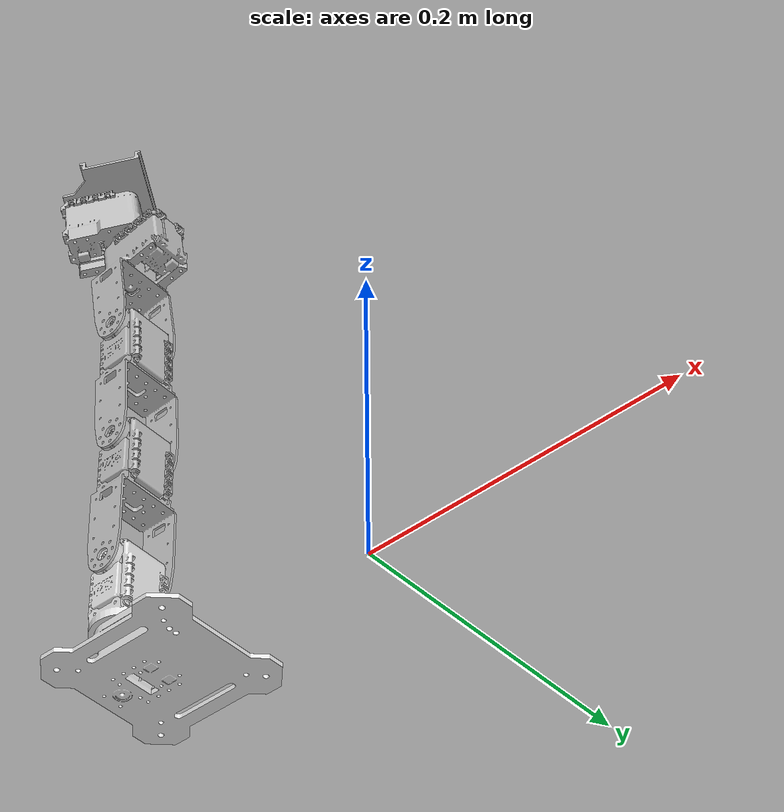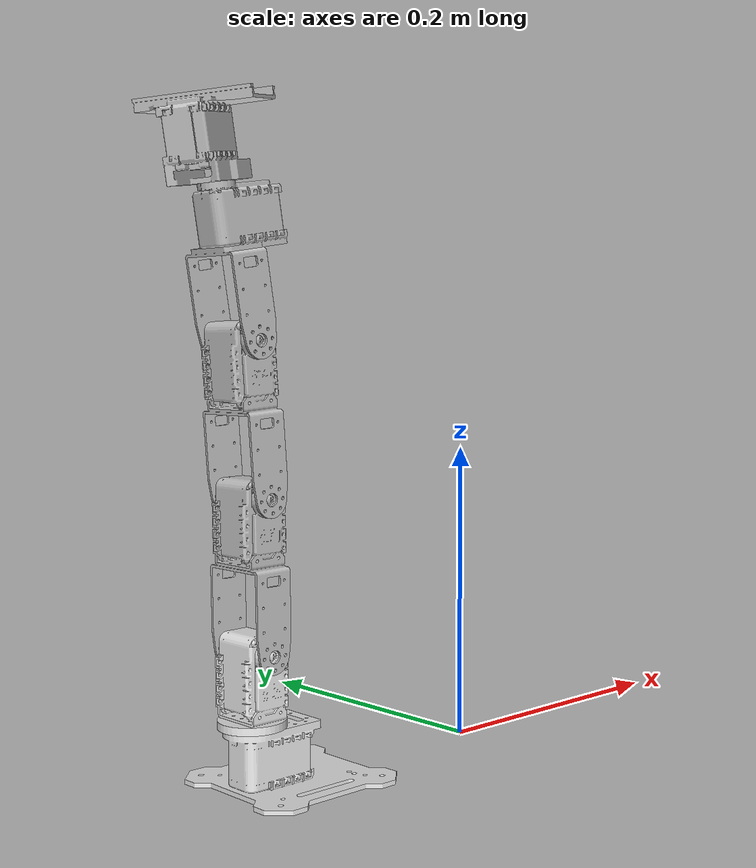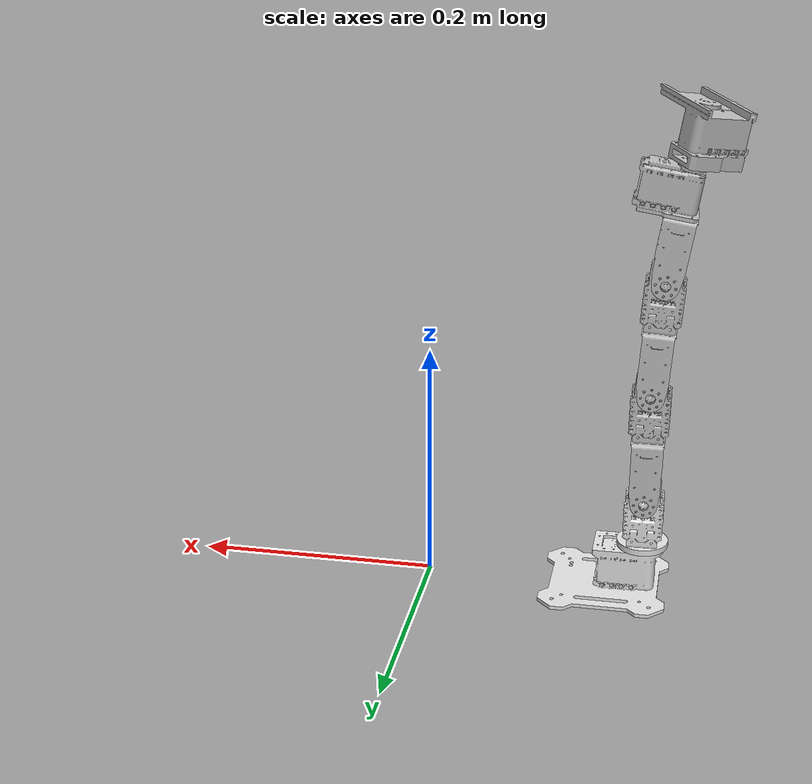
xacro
<?xml version="1.0"?>
<robot xmlns:xacro="http://www.ros.org/wiki/xacro" name="manipulator">
    <xacro:arg name="initial_positions_file" default="initial_positions.yaml" />

    <!-- Import manipulator urdf file -->
    <xacro:include filename="$(find manipulator_description)/urdf/Manipulator.urdf" />

    <!-- Import control_xacro -->
    <xacro:include filename="manipulator.ros2_control.xacro" />

    <xacro:manipulator_ros2_control name="FakeSystem" initial_positions_file="$(arg initial_positions_file)"/>

</robot>

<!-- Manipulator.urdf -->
<robot
  name="manipulator">
  <link name="world"/>

	<joint name="world_to_base" type="fixed">
  		<parent link="world"/>
  		<child link="base_link"/>
  		<origin xyz="0 0 0" rpy="-1.5707963267949 0 0"/>
	</joint>
  <link

    name="base_link">
    <inertial>
      <origin
        xyz="-0.152350210760628 0.000112770175221908 0.007703132370007"
        rpy="0 0 0" />
      <mass
        value="0.0297315013098253" />
      <inertia
        ixx="2.06485095784742E-05"
        ixy="-3.43877400125651E-08"
        ixz="2.32406456919073E-15"
        iyy="2.24686002618518E-05"
        iyz="-3.87347211027402E-15"
        izz="4.30593792645638E-05" />
    </inertial>
    <visual>
      <origin
        xyz="0 0 0"
        rpy="0 0 0" />
      <geometry>
        <mesh
          filename="package://manipulator_description/meshes/base_link.STL" />
      </geometry>
      <material
        name="">
        <color
          rgba="0.898039215686275 0.898039215686275 0.898039215686275 1" />
      </material>
    </visual>
    <collision>
      <origin
        xyz="0 0 0"
        rpy="0 0 0" />
      <geometry>
        <mesh
          filename="package://manipulator_description/meshes/base_link.STL" />
      </geometry>
    </collision>
  </link>
  <link
    name="link_1">
    <inertial>
      <origin
        xyz="-1.96108115302351E-08 -4.21023727616844E-05 0.00344391215781106"
        rpy="0 0 0" />
      <mass
        value="0.00850057478866205" />
      <inertia
        ixx="1.07086528911205E-06"
        ixy="3.80632132455145E-15"
        ixz="1.51356492964835E-15"
        iyy="9.10257345631072E-07"
        iyz="2.33205453116409E-15"
        izz="1.939508016614E-06" />
    </inertial>
    <visual>
      <origin
        xyz="0 0 0"
        rpy="0 0 0" />
      <geometry>
        <mesh
          filename="package://manipulator_description/meshes/1.STL" />
      </geometry>
      <material
        name="">
        <color
          rgba="0.898039215686275 0.898039215686275 0.898039215686275 1" />
      </material>
    </visual>
    <collision>
      <origin
        xyz="0 0 0"
        rpy="0 0 0" />
      <geometry>
        <mesh
          filename="package://manipulator_description/meshes/1.STL" />
      </geometry>
    </collision>
  </link>
  <joint
    name="joint_1"
    type="revolute">
    <origin
      xyz="-0.180075738834269 -0.0399304 7.57388346011159E-05"
      rpy="1.5707963267949 -0.0157623178412577 0" />
    <parent
      link="base_link" />
    <child
      link="link_1" />
    <axis
      xyz="0 0 1" />

    <limit
      lower="-2.617994"
      upper="2.617994"
      effort="1.8"
      velocity="10.16" />
  </joint>
  <link
    name="link_2">
    <inertial>
      <origin
        xyz="-1.39333166115918E-07 1.11541899113416E-05 -0.0359650612324358"
        rpy="0 0 0" />
      <mass
        value="0.0074541146864137" />
      <inertia
        ixx="4.66186356716402E-06"
        ixy="-6.35609900353012E-15"
        ixz="4.9291128829995E-11"
        iyy="2.57771100183332E-06"
        iyz="9.62743206573033E-13"
        izz="2.91275276168572E-06" />
    </inertial>
    <visual>
      <origin
        xyz="0 0 0"
        rpy="0 0 0" />
      <geometry>
        <mesh
          filename="package://manipulator_description/meshes/2.STL" />
      </geometry>
      <material
        name="">
        <color
          rgba="0.749019607843137 0.749019607843137 0.749019607843137 1" />
      </material>
    </visual>
    <collision>
      <origin
        xyz="0 0 0"
        rpy="0 0 0" />
      <geometry>
        <mesh
          filename="package://manipulator_description/meshes/2.STL" />
      </geometry>
    </collision>
  </link>
  <joint
    name="joint_2"
    type="revolute">
    <origin
      xyz="0 0 0.0465"
      rpy="3.14159265358979 0.0105410811316586 3.14159265358979" />
    <parent
      link="link_1" />
    <child
      link="link_2" />
    <axis
      xyz="0 1 0" />

    <limit
      lower="-1.8"
      upper="1.8"
      effort="1.8"
      velocity="10.16" />
  </joint>
  <link
    name="link_3">
    <inertial>
      <origin
        xyz="-1.39344087102256E-07 7.11618093872024E-05 -0.0359650612287715"
        rpy="0 0 0" />
      <mass
        value="0.00745411468641823" />
      <inertia
        ixx="4.66186356615728E-06"
        ixy="-1.74794577704533E-14"
        ixz="4.92903733550724E-11"
        iyy="2.57771100081069E-06"
        iyz="9.540551437797E-13"
        izz="2.91275276153165E-06" />
    </inertial>
    <visual>
      <origin
        xyz="0 0 0"
        rpy="0 0 0" />
      <geometry>
        <mesh
          filename="package://manipulator_description/meshes/3.STL" />
      </geometry>
      <material
        name="">
        <color
          rgba="0.749019607843137 0.749019607843137 0.749019607843137 1" />
      </material>
    </visual>
    <collision>
      <origin
        xyz="0 0 0"
        rpy="0 0 0" />
      <geometry>
        <mesh
          filename="package://manipulator_description/meshes/3.STL" />
      </geometry>
    </collision>
  </link>
  <joint
    name="joint_3"
    type="revolute">
    <origin
      xyz="0 0 -0.0940004988482873"
      rpy="0 -0.0602056446199069 0" />
    <parent
      link="link_2" />
    <child
      link="link_3" />
    <axis
      xyz="0 1 0" />

    <limit
      lower="-2.3"
      upper="2.3"
      effort="1.8"
      velocity="10.16" />
  </joint>
  <link
    name="link_4">
    <inertial>
      <origin
        xyz="-0.0019052350064897 0.000179212999030376 -0.0390837412997081"
        rpy="0 0 0" />
      <mass
        value="0.00904662926569353" />
      <inertia
        ixx="4.8574742282933E-06"
        ixy="-2.11093337117097E-14"
        ixz="4.92909064141084E-11"
        iyy="2.93918488464772E-06"
        iyz="9.4579900839046E-13"
        izz="3.47794909511621E-06" />
    </inertial>
    <visual>
      <origin
        xyz="0 0 0"
        rpy="0 0 0" />
      <geometry>
        <mesh
          filename="package://manipulator_description/meshes/4.STL" />
      </geometry>
      <material
        name="">
        <color
          rgba="0.749019607843137 0.749019607843137 0.749019607843137 1" />
      </material>
    </visual>
    <collision>
      <origin
        xyz="0 0 0"
        rpy="0 0 0" />
      <geometry>
        <mesh
          filename="package://manipulator_description/meshes/4.STL" />
      </geometry>
    </collision>
  </link>
  <joint
    name="joint_4"
    type="revolute">
    <origin
      xyz="0 0 -0.0940004988482917"
      rpy="0 -0.0896254408501377 0" />
    <parent
      link="link_3" />
    <child
      link="link_4" />
    <axis
      xyz="0 1 0" />

    <limit
      lower="-2.2"
      upper="2.2"
      effort="1.8"
      velocity="10.16" />
  </joint>
  <link
    name="link_5">
    <inertial>
      <origin
        xyz="-0.00412017393846792 0.019983014952681 0.000118252871469049"
        rpy="0 0 0" />
      <mass
        value="0.0164080340237465" />
      <inertia
        ixx="4.87879636001207E-06"
        ixy="-1.85509258291174E-09"
        ixz="3.35451603835896E-09"
        iyy="7.81747236699756E-06"
        iyz="4.35613938073601E-10"
        izz="3.06988858153027E-06" />
    </inertial>
    <visual>
      <origin
        xyz="0 0 0"
        rpy="0 0 0" />
      <geometry>
        <mesh
          filename="package://manipulator_description/meshes/5.STL" />
      </geometry>
      <material
        name="">
        <color
          rgba="0.749019607843137 0.749019607843137 0.749019607843137 1" />
      </material>
    </visual>
    <collision>
      <origin
        xyz="0 0 0"
        rpy="0 0 0" />
      <geometry>
        <mesh
          filename="package://manipulator_description/meshes/5.STL" />
      </geometry>
    </collision>
  </link>
  <joint
    name="joint_5"
    type="revolute">
    <origin
      xyz="-0.000249682938632756 0.000179211107190711 -0.0953824695796134"
      rpy="-1.57079632679492 0 2.59269156911032" />
    <parent
      link="link_4" />
    <child
      link="link_5" />
    <axis
      xyz="0 1 0" />

    <limit
      lower="-2.617994"
      upper="2.617994"
      effort="1.8"
      velocity="10.16" />
  </joint>

  <ros2_control name="ManipulatorSystem" type="system">
    <hardware>
      <plugin>mock_components/GenericSystem</plugin>
    </hardware>
    <joint name="joint_1">
      <command_interface name="position">
        <param name="min">-2.617994</param>
        <param name="max">2.617994</param>
      </command_interface>
      <state_interface name="position"/>
      <state_interface name="velocity"/>
      <state_interface name="effort"/>
    </joint>
    <joint name="joint_2">
      <command_interface name="position">
        <param name="min">-2.617994</param>
        <param name="max">2.617994</param>
      </command_interface>
      <state_interface name="position"/>
      <state_interface name="velocity"/>
      <state_interface name="effort"/>
    </joint>
    <joint name="joint_3">
      <command_interface name="position">
        <param name="min">-2.617994</param>
        <param name="max">2.617994</param>
      </command_interface>
      <state_interface name="position"/>
      <state_interface name="velocity"/>
      <state_interface name="effort"/>
    </joint>
    <joint name="joint_4">
      <command_interface name="position">
        <param name="min">-2.617994</param>
        <param name="max">2.617994</param>
      </command_interface>
      <state_interface name="position"/>
      <state_interface name="velocity"/>
      <state_interface name="effort"/>
    </joint>
    <joint name="joint_5">
      <command_interface name="position">
        <param name="min">-2.617994</param>
        <param name="max">2.617994</param>
      </command_interface>
      <state_interface name="position"/>
      <state_interface name="velocity"/>
      <state_interface name="effort"/>
    </joint>
  </ros2_control>

  <gazebo>
    <plugin filename="libgazebo_ros2_control.so" name="gazebo_ros2_control">
      <parameters>$(find manipulator_description)/config/ros2_controllers.yaml</parameters>
    </plugin>
  </gazebo>
</robot>
